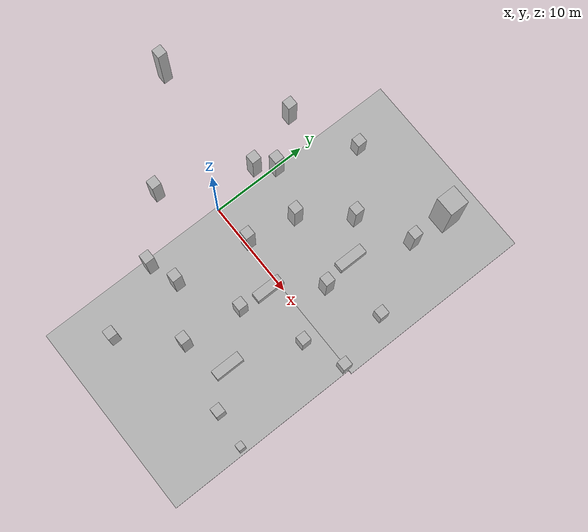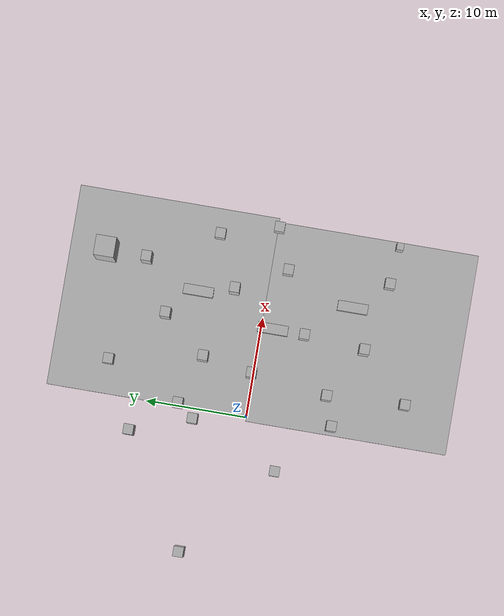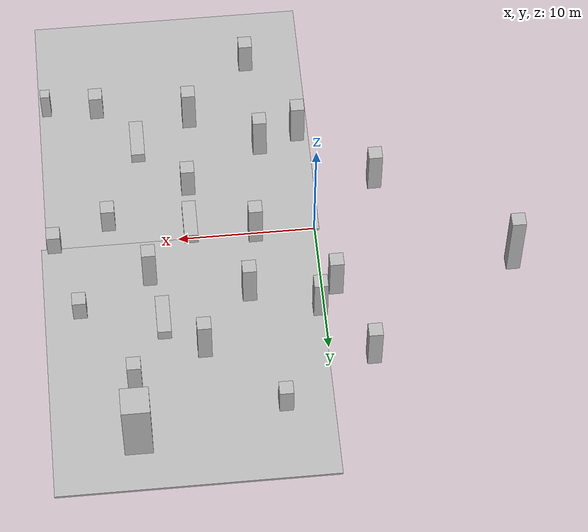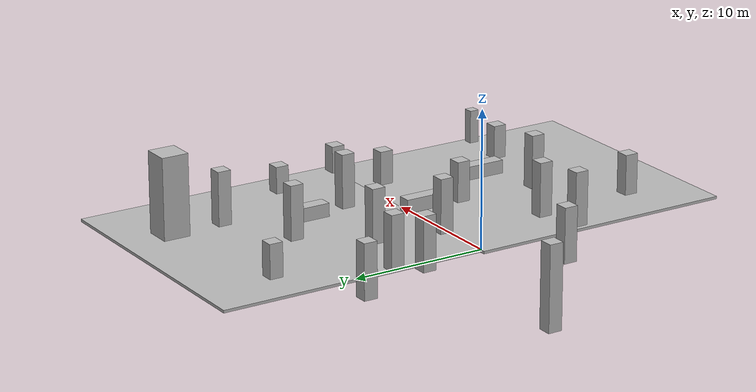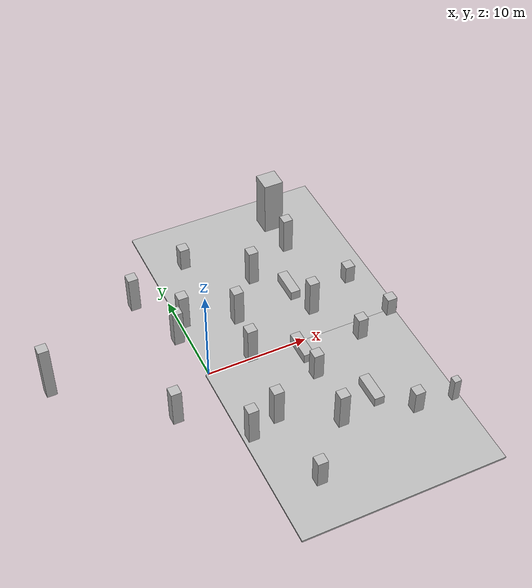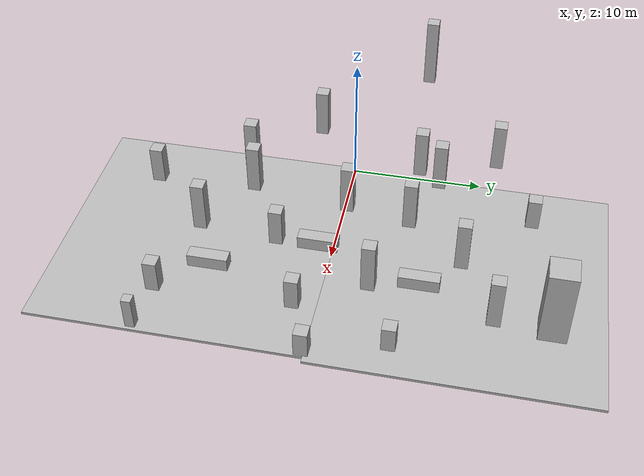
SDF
<sdf version="1.6">
 <world name="default">
  <model name="bb2">
   <static>1</static>
   <link name="chassis">
    <pose>19.0671 -12.1318 1.25 0 -0 0</pose>
    <collision name="collision"><geometry><box><size>0.7 0.7 2.5</size></box></geometry></collision>
    <visual name="visual">
     <geometry>
      <mesh><uri>model://brick_box_1/meshes/simple_box.dae</uri><scale>0.7 0.7 2.5</scale></mesh>
     </geometry>
     <material>
      <script>
       <uri>model://brick_box_1/materials/scripts</uri>
       <uri>model://brick_box_1/materials/textures</uri>
       <name>BrickBox/Diffuse</name>
      </script>
     </material>
    </visual>
   </link>
  </model>
  <model name="bb3">
   <static>1</static>
   <link name="chassis">
    <pose>19.0671 -0.13179 1 0 -0 0</pose>
    <collision name="collision"><geometry><box><size>1 1 2</size></box></geometry></collision>
    <visual name="visual">
     <geometry><mesh><uri>model://brick_box_1/meshes/simple_box.dae</uri><scale>1 1 2</scale></mesh></geometry>
     <material>
      <script>
       <uri>model://brick_box_1/materials/scripts</uri>
       <uri>model://brick_box_1/materials/textures</uri>
       <name>BrickBox/Diffuse</name>
      </script>
     </material>
    </visual>
   </link>
  </model>
  <model name="bb9">
   <static>1</static>
   <link name="chassis">
    <pose>-14 4.25 3 0 -0 0</pose>
    <collision name="collision"><geometry><box><size>1 1 6</size></box></geometry></collision>
    <visual name="visual">
     <geometry><mesh><uri>model://brick_box_3/meshes/simple_box.dae</uri><scale>1 1 6</scale></mesh></geometry>
     <material>
      <script>
       <uri>model://brick_box_3/materials/scripts</uri>
       <uri>model://brick_box_3/materials/textures</uri>
       <name>BrickBox/Sea</name>
      </script>
     </material>
    </visual>
   </link>
  </model>
  <model name="bb10">
   <static>1</static>
   <link name="chassis">
    <pose>14 16.25 3 0 -0 0</pose>
    <collision name="collision"><geometry><box><size>2 2 6</size></box></geometry></collision>
    <visual name="visual">
     <geometry><mesh><uri>model://brick_box_3/meshes/simple_box.dae</uri><scale>2 2 6</scale></mesh></geometry>
     <material>
      <script>
       <uri>model://brick_box_3/materials/scripts</uri>
       <uri>model://brick_box_3/materials/textures</uri>
       <name>BrickBox/Sea</name>
      </script>
     </material>
    </visual>
   </link>
  </model>
  <model name="bb14">
   <static>1</static>
   <link name="chassis">
    <pose>9.0671 -1.13179 0.5 0 -0 0</pose>
    <collision name="collision"><geometry><box><size>1 3 1</size></box></geometry></collision>
    <visual name="visual">
     <geometry><mesh><uri>model://brick_box_3/meshes/simple_box.dae</uri><scale>1 3 1</scale></mesh></geometry>
     <material>
      <script>
       <uri>model://brick_box_3/materials/scripts</uri>
       <uri>model://brick_box_3/materials/textures</uri>
       <name>BrickBox/Sea</name>
      </script>
     </material>
    </visual>
   </link>
  </model>
  <model name="brick_box_3_0">
   <static>1</static>
   <link name="chassis">
    <pose>-4.76455 -3.62531 2 0 -0 0</pose>
    <collision name="collision"><geometry><box><size>1 1 4</size></box></geometry></collision>
    <visual name="visual">
     <geometry><mesh><uri>model://brick_box_3/meshes/simple_box.dae</uri><scale>1 1 4</scale></mesh></geometry>
     <material>
      <script>
       <uri>model://brick_box_3/materials/scripts</uri>
       <uri>model://brick_box_3/materials/textures</uri>
       <name>BrickBox/Sea</name>
      </script>
     </material>
    </visual>
   </link>
  </model>
  <model name="brick_box_2_8">
   <static>1</static>
   <link name="chassis">
    <pose>0 0 1 0 -0 0</pose>
    <collision name="collision"><geometry><box><size>1 1 2</size></box></geometry></collision>
    <visual name="visual">
     <geometry><mesh><uri>model://brick_box_2/meshes/simple_box.dae</uri><scale>1 1 2</scale></mesh></geometry>
     <material>
      <script>
       <uri>model://brick_box_2/materials/scripts</uri>
       <uri>model://brick_box_2/materials/textures</uri>
       <name>BrickBox/Flower</name>
      </script>
     </material>
    </visual>
   </link>
   <pose>17.4886 5.51244 0 0 -0 0</pose>
  </model>
  <model name="brick_box_3_5">
   <static>1</static>
   <link name="chassis">
    <pose>0 0 2 0 -0 0</pose>
    <collision name="collision"><geometry><box><size>1 1 4</size></box></geometry></collision>
    <visual name="visual">
     <geometry><mesh><uri>model://brick_box_3/meshes/simple_box.dae</uri><scale>1 1 4</scale></mesh></geometry>
     <material>
      <script>
       <uri>model://brick_box_3/materials/scripts</uri>
       <uri>model://brick_box_3/materials/textures</uri>
       <name>BrickBox/Sea</name>
      </script>
     </material>
    </visual>
   </link>
   <pose>0.504016 -8.36044 0 0 -0 0</pose>
  </model>
  <model name="brick_box_3_6">
   <static>1</static>
   <link name="chassis">
    <pose>0 0 1.5 0 -0 0</pose>
    <collision name="collision"><geometry><box><size>1 1 3</size></box></geometry></collision>
    <visual name="visual">
     <geometry><mesh><uri>model://brick_box_3/meshes/simple_box.dae</uri><scale>1 1 3</scale></mesh></geometry>
     <material>
      <script>
       <uri>model://brick_box_3/materials/scripts</uri>
       <uri>model://brick_box_3/materials/textures</uri>
       <name>BrickBox/Sea</name>
      </script>
     </material>
    </visual>
   </link>
   <pose>3.79789 -15.1346 0 0 -0 0</pose>
  </model>
  <model name="brick_box_3_10">
   <static>1</static>
   <link name="chassis">
    <pose>0 0 1.5 0 -0 0</pose>
    <collision name="collision"><geometry><box><size>1 1 3</size></box></geometry></collision>
    <visual name="visual">
     <geometry><mesh><uri>model://brick_box_3/meshes/simple_box.dae</uri><scale>1 1 3</scale></mesh></geometry>
     <material>
      <script>
       <uri>model://brick_box_3/materials/scripts</uri>
       <uri>model://brick_box_3/materials/textures</uri>
       <name>BrickBox/Sea</name>
      </script>
     </material>
    </visual>
   </link>
   <pose>8.98169 -4.28757 0 0 -0 0</pose>
  </model>
  <model name="brick_box_3_15">
   <static>1</static>
   <link name="chassis">
    <pose>0 0 0.5 0 -0 0</pose>
    <collision name="collision"><geometry><box><size>1 1 4</size></box></geometry></collision>
    <visual name="visual">
     <geometry><mesh><uri>model://brick_box_3/meshes/simple_box.dae</uri><scale>1 1 4</scale></mesh></geometry>
     <material>
      <script>
       <uri>model://brick_box_3/materials/scripts</uri>
       <uri>model://brick_box_3/materials/textures</uri>
       <name>BrickBox/Sea</name>
      </script>
     </material>
    </visual>
   </link>
   <pose>15.0215 -1.69596 0 0 -0 0</pose>
  </model>
  <model name="brick_box_3_16">
   <static>1</static>
   <link name="chassis">
    <pose>0 0 0.5 0 -0 0</pose>
    <collision name="collision"><geometry><box><size>1 1 4</size></box></geometry></collision>
    <visual name="visual">
     <geometry><mesh><uri>model://brick_box_3/meshes/simple_box.dae</uri><scale>1 1 4</scale></mesh></geometry>
     <material>
      <script>
       <uri>model://brick_box_3/materials/scripts</uri>
       <uri>model://brick_box_3/materials/textures</uri>
       <name>BrickBox/Sea</name>
      </script>
     </material>
    </visual>
   </link>
   <pose>15.322 -11.7631 0 0 -0 0</pose>
  </model>
  <model name="brick_box_3_17">
   <static>1</static>
   <link name="chassis">
    <pose>0 0 0.5 0 -0 0</pose>
    <collision name="collision"><geometry><box><size>1 1 4</size></box></geometry></collision>
    <visual name="visual">
     <geometry><mesh><uri>model://brick_box_3/meshes/simple_box.dae</uri><scale>1 1 4</scale></mesh></geometry>
     <material>
      <script>
       <uri>model://brick_box_3/materials/scripts</uri>
       <uri>model://brick_box_3/materials/textures</uri>
       <name>BrickBox/Sea</name>
      </script>
     </material>
    </visual>
   </link>
   <pose>3.47314 14.3082 0 0 -0 0</pose>
  </model>
  <model name="brick_box_3_0_clone">
   <static>1</static>
   <link name="chassis">
    <pose>-4.76455 -3.62531 2 0 -0 0</pose>
    <collision name="collision"><geometry><box><size>1 1 4</size></box></geometry></collision>
    <visual name="visual">
     <geometry><mesh><uri>model://brick_box_3/meshes/simple_box.dae</uri><scale>1 1 4</scale></mesh></geometry>
     <material>
      <script>
       <uri>model://brick_box_3/materials/scripts</uri>
       <uri>model://brick_box_3/materials/textures</uri>
       <name>BrickBox/Sea</name>
      </script>
     </material>
    </visual>
   </link>
   <pose>9.14556 3.83106 0 0 -0 0</pose>
  </model>
  <model name="brick_box_3_0_clone_0">
   <static>1</static>
   <link name="chassis">
    <pose>-4.76455 -3.62531 2 0 -0 0</pose>
    <collision name="collision"><geometry><box><size>1 1 4</size></box></geometry></collision>
    <visual name="visual">
     <geometry><mesh><uri>model://brick_box_3/meshes/simple_box.dae</uri><scale>1 1 4</scale></mesh></geometry>
     <material>
      <script>
       <uri>model://brick_box_3/materials/scripts</uri>
       <uri>model://brick_box_3/materials/textures</uri>
       <name>BrickBox/Sea</name>
      </script>
     </material>
    </visual>
   </link>
   <pose>1.66519 14.7334 0 0 -0 0</pose>
  </model>
  <model name="brick_box_3_0_clone_1">
   <static>1</static>
   <link name="chassis">
    <pose>-4.76455 -3.62531 2 0 -0 0</pose>
    <collision name="collision"><geometry><box><size>1 1 4</size></box></geometry></collision>
    <visual name="visual">
     <geometry><mesh><uri>model://brick_box_3/meshes/simple_box.dae</uri><scale>1 1 4</scale></mesh></geometry>
     <material>
      <script>
       <uri>model://brick_box_3/materials/scripts</uri>
       <uri>model://brick_box_3/materials/textures</uri>
       <name>BrickBox/Sea</name>
      </script>
     </material>
    </visual>
   </link>
   <pose>5.06592 10.453 0 0 -0 0</pose>
  </model>
  <model name="brick_box_3_0_clone_2">
   <static>1</static>
   <link name="chassis">
    <pose>-4.76455 -3.62531 2 0 -0 0</pose>
    <collision name="collision"><geometry><box><size>1 1 4</size></box></geometry></collision>
    <visual name="visual">
     <geometry><mesh><uri>model://brick_box_3/meshes/simple_box.dae</uri><scale>1 1 4</scale></mesh></geometry>
     <material>
      <script>
       <uri>model://brick_box_3/materials/scripts</uri>
       <uri>model://brick_box_3/materials/textures</uri>
       <name>BrickBox/Sea</name>
      </script>
     </material>
    </visual>
   </link>
   <pose>8.16747 -3.79329 0 0 -0 0</pose>
  </model>
  <model name="brick_box_3_0_clone_3">
   <static>1</static>
   <link name="chassis">
    <pose>-4.76455 -3.62531 2 0 -0 0</pose>
    <collision name="collision"><geometry><box><size>1 1 4</size></box></geometry></collision>
    <visual name="visual">
     <geometry><mesh><uri>model://brick_box_3/meshes/simple_box.dae</uri><scale>1 1 4</scale></mesh></geometry>
     <material>
      <script>
       <uri>model://brick_box_3/materials/scripts</uri>
       <uri>model://brick_box_3/materials/textures</uri>
       <name>BrickBox/Sea</name>
      </script>
     </material>
    </visual>
   </link>
   <pose>13.2129 -6.68049 0 0 -0 0</pose>
  </model>
  <model name="brick_box_3_0_clone_4">
   <static>1</static>
   <link name="chassis">
    <pose>-4.76455 -3.62531 2 0 -0 0</pose>
    <collision name="collision"><geometry><box><size>1 1 4</size></box></geometry></collision>
    <visual name="visual">
     <geometry><mesh><uri>model://brick_box_3/meshes/simple_box.dae</uri><scale>1 1 4</scale></mesh></geometry>
     <material>
      <script>
       <uri>model://brick_box_3/materials/scripts</uri>
       <uri>model://brick_box_3/materials/textures</uri>
       <name>BrickBox/Sea</name>
      </script>
     </material>
    </visual>
   </link>
   <pose>13.5787 13.1221 0 0 -0 0</pose>
  </model>
  <model name="brick_box_3_0_clone_5">
   <static>1</static>
   <link name="chassis">
    <pose>-4.76455 -3.62531 2 0 -0 0</pose>
    <collision name="collision"><geometry><box><size>1 1 4</size></box></geometry></collision>
    <visual name="visual">
     <geometry><mesh><uri>model://brick_box_3/meshes/simple_box.dae</uri><scale>1 1 4</scale></mesh></geometry>
     <material>
      <script>
       <uri>model://brick_box_3/materials/scripts</uri>
       <uri>model://brick_box_3/materials/textures</uri>
       <name>BrickBox/Sea</name>
      </script>
     </material>
    </visual>
   </link>
   <pose>10.015 8.79086 0 0 -0 0</pose>
  </model>
  <model name="brick_box_3_0_clone_6">
   <static>1</static>
   <link name="chassis">
    <pose>-4.76455 -3.62531 2 0 -0 0</pose>
    <collision name="collision"><geometry><box><size>1 1 4</size></box></geometry></collision>
    <visual name="visual">
     <geometry><mesh><uri>model://brick_box_3/meshes/simple_box.dae</uri><scale>1 1 4</scale></mesh></geometry>
     <material>
      <script>
       <uri>model://brick_box_3/materials/scripts</uri>
       <uri>model://brick_box_3/materials/textures</uri>
       <name>BrickBox/Sea</name>
      </script>
     </material>
    </visual>
   </link>
   <pose>17.0764 6.83452 0 0 -0 0</pose>
  </model>
  <model name="brick_box_3_0_clone_7">
   <static>1</static>
   <link name="chassis">
    <pose>-4.76455 -3.62531 2 0 -0 0</pose>
    <collision name="collision"><geometry><box><size>1 1 4</size></box></geometry></collision>
    <visual name="visual">
     <geometry><mesh><uri>model://brick_box_3/meshes/simple_box.dae</uri><scale>1 1 4</scale></mesh></geometry>
     <material>
      <script>
       <uri>model://brick_box_3/materials/scripts</uri>
       <uri>model://brick_box_3/materials/textures</uri>
       <name>BrickBox/Sea</name>
      </script>
     </material>
    </visual>
   </link>
   <pose>18.6825 15.8653 0 0 -0 0</pose>
  </model>
  <model name="bb14_clone_3">
   <static>1</static>
   <link name="chassis">
    <pose>9.0671 -1.13179 0.5 0 -0 0</pose>
    <collision name="collision"><geometry><box><size>1 3 1</size></box></geometry></collision>
    <visual name="visual">
     <geometry><mesh><uri>model://brick_box_3/meshes/simple_box.dae</uri><scale>1 3 1</scale></mesh></geometry>
     <material>
      <script>
       <uri>model://brick_box_3/materials/scripts</uri>
       <uri>model://brick_box_3/materials/textures</uri>
       <name>BrickBox/Sea</name>
      </script>
     </material>
    </visual>
   </link>
   <pose>2.5108 7.87446 0 0 -0 0</pose>
  </model>
  <model name="bb14_clone_5">
   <static>1</static>
   <link name="chassis">
    <pose>9.0671 -1.13179 0.5 0 -0 0</pose>
    <collision name="collision"><geometry><box><size>1 3 1</size></box></geometry></collision>
    <visual name="visual">
     <geometry><mesh><uri>model://brick_box_3/meshes/simple_box.dae</uri><scale>1 3 1</scale></mesh></geometry>
     <material>
      <script>
       <uri>model://brick_box_3/materials/scripts</uri>
       <uri>model://brick_box_3/materials/textures</uri>
       <name>BrickBox/Sea</name>
      </script>
     </material>
    </visual>
   </link>
   <pose>3.4044 -7.41662 0 0 -0 0</pose>
  </model>
  <model name="gd3_clone_0">
   <static>1</static>
   <link name="chassis">
    <pose>-10 10 -0.1 0 -0 0</pose>
    <collision name="collision"><geometry><box><size>20 20 0.2</size></box></geometry></collision>
    <visual name="visual">
     <geometry>
      <mesh><uri>model://ground_surface/meshes/simple_box.dae</uri><scale>20 20 0.2</scale></mesh>
     </geometry>
     <material>
      <script>
       <uri>model://ground_surface/materials/scripts</uri>
       <uri>model://ground_surface/materials/textures</uri>
       <name>BrickBox/Ground</name>
      </script>
     </material>
    </visual>
   </link>
   <pose>19.6552 -19.992 0 0 -0 0</pose>
  </model>
  <model name="gd3_clone_1">
   <static>1</static>
   <link name="chassis">
    <pose>-10 10 -0.1 0 -0 0</pose>
    <collision name="collision"><geometry><box><size>20 20 0.2</size></box></geometry></collision>
    <visual name="visual">
     <geometry>
      <mesh><uri>model://ground_surface/meshes/simple_box.dae</uri><scale>20 20 0.2</scale></mesh>
     </geometry>
     <material>
      <script>
       <uri>model://ground_surface/materials/scripts</uri>
       <uri>model://ground_surface/materials/textures</uri>
       <name>BrickBox/Ground</name>
      </script>
     </material>
    </visual>
   </link>
   <pose>20.0406 0.0057 0 0 -0 0</pose>
  </model>
  <model name="bb11_clone_clone">
   <static>1</static>
   <link name="chassis">
    <pose>-6.335 12 2 0 -0 0</pose>
    <collision name="collision"><geometry><box><size>1 1 4</size></box></geometry></collision>
    <visual name="visual">
     <geometry><mesh><uri>model://brick_box_1/meshes/simple_box.dae</uri><scale>1 1 4</scale></mesh></geometry>
     <material>
      <script>
       <uri>model://brick_box_1/materials/scripts</uri>
       <uri>model://brick_box_1/materials/textures</uri>
       <name>BrickBox/Diffuse</name>
      </script>
     </material>
    </visual>
   </link>
   <pose>5.34176 -6.84602 0 0 -0 0</pose>
  </model>
 </world>
</sdf>
